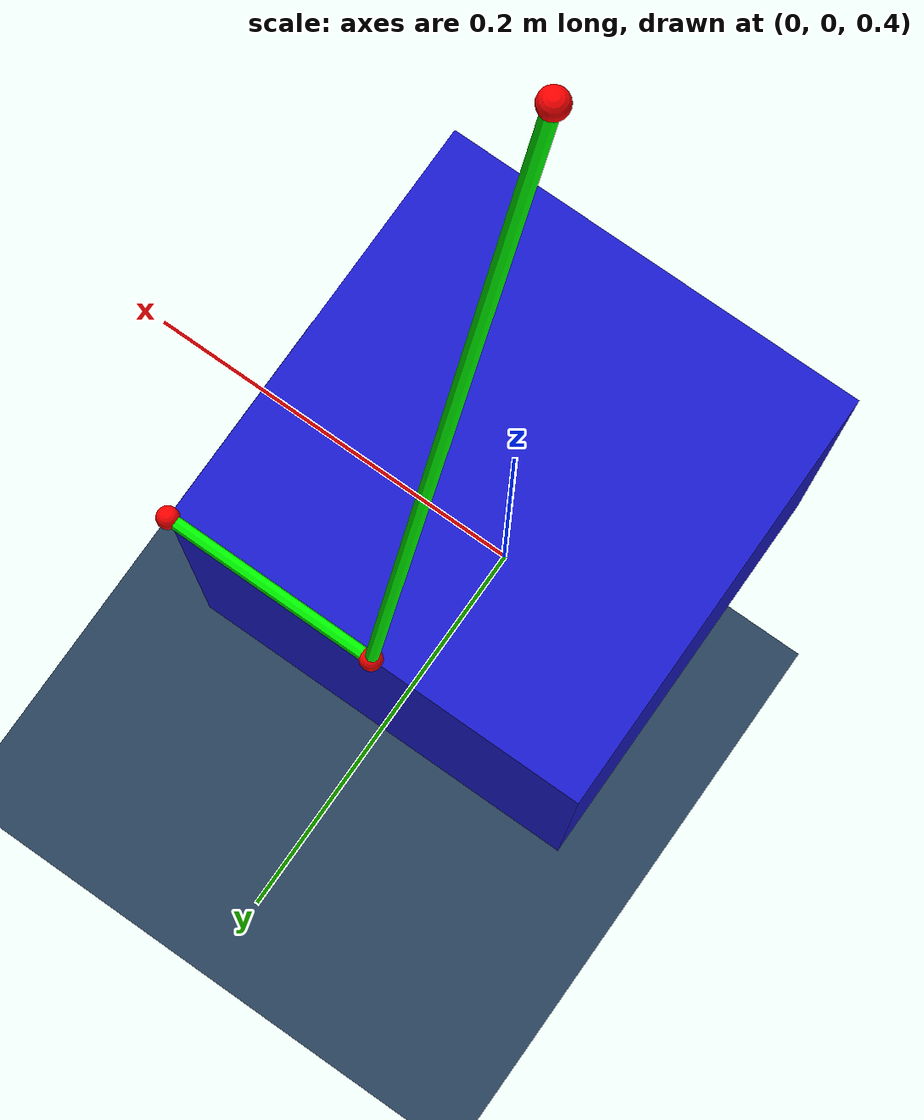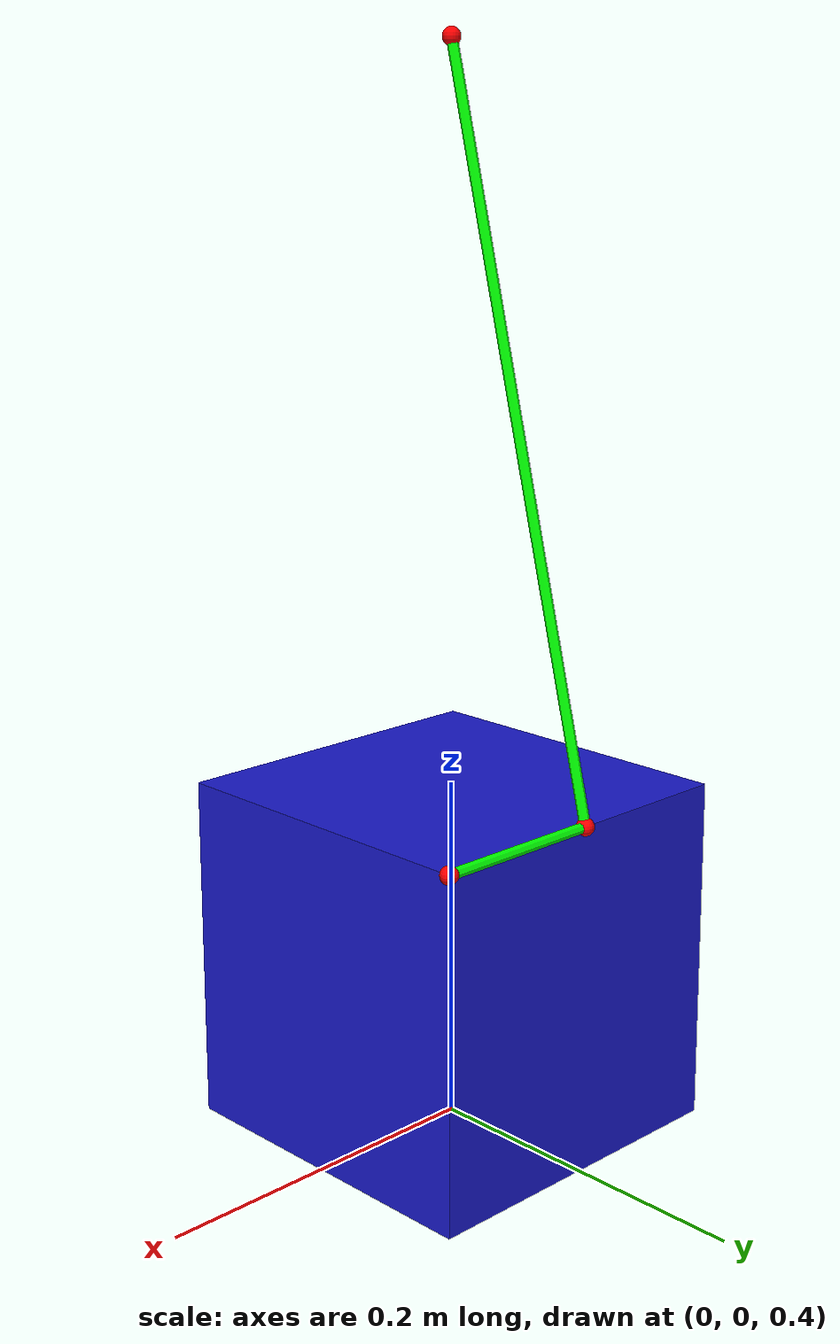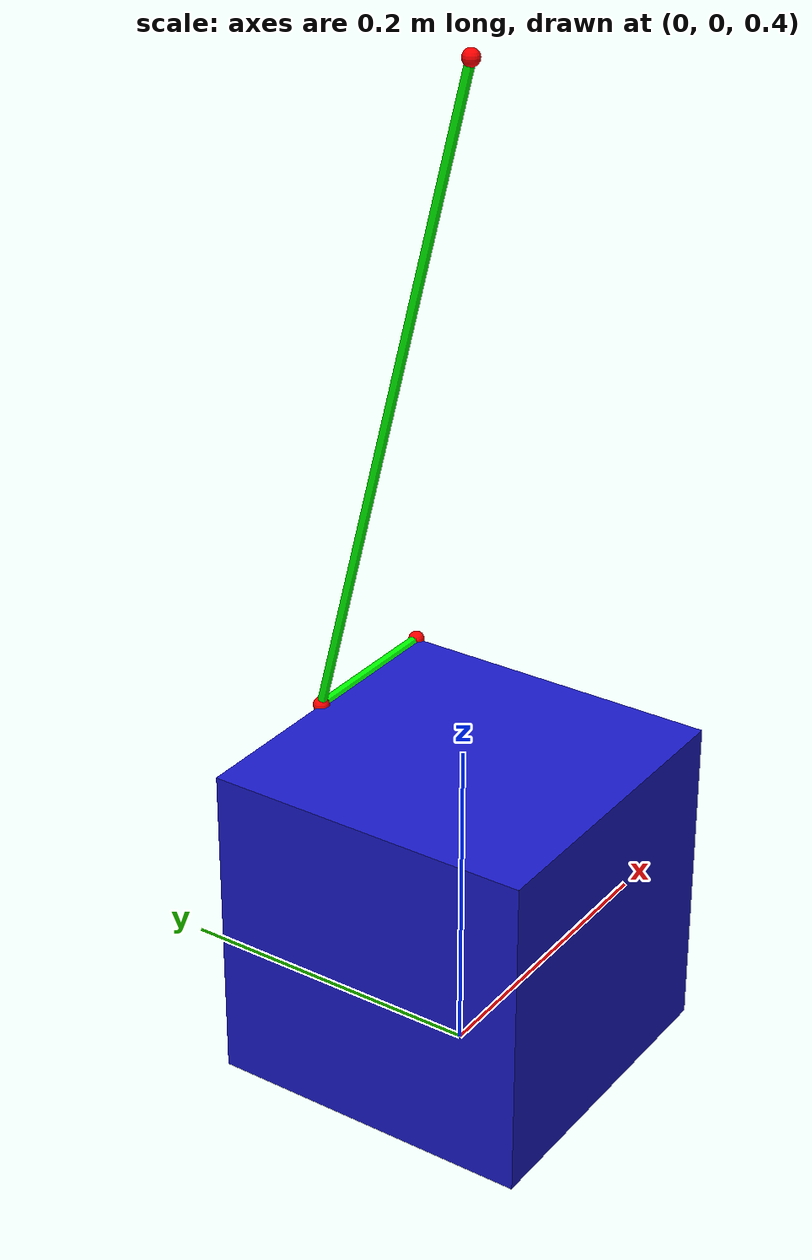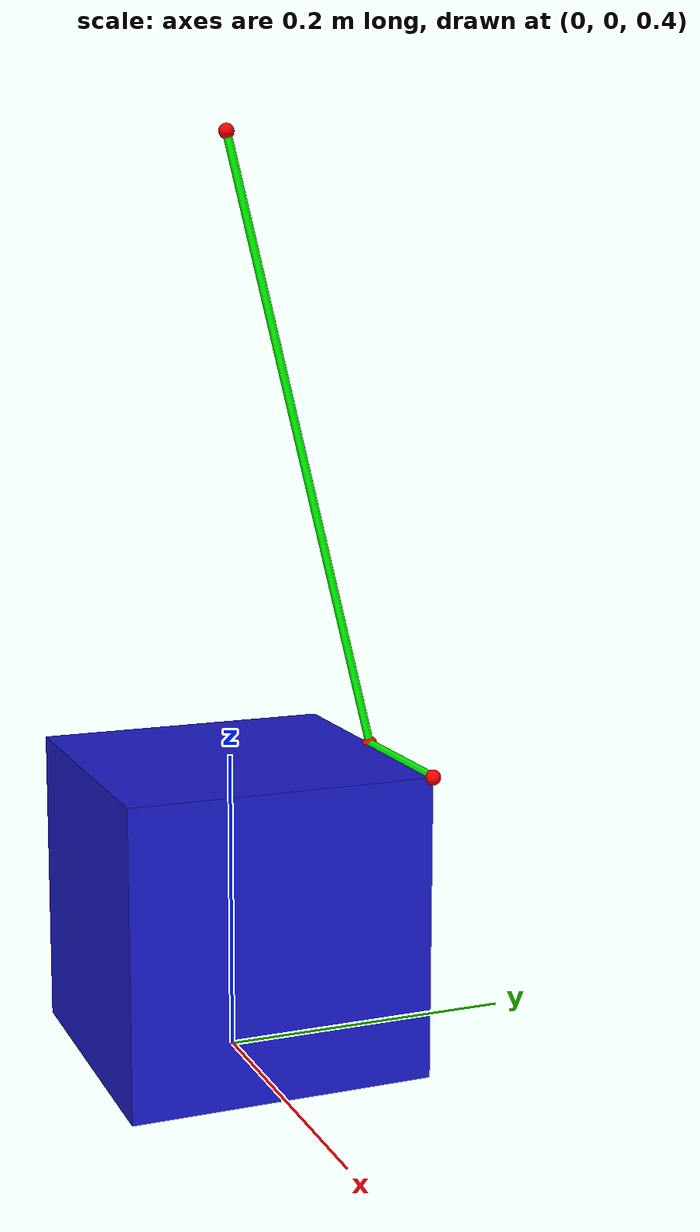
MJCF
<mujoco>

    <default>
        <site type="sphere" rgba="1 0 0 1" size="0.005"/>
        <tendon rgba="0 1 0 1" stiffness="50" damping="50"/>
    </default>

    <asset>
        <texture name="grid" type="2d" builtin="checker" width="512" height="512" rgb1=".1 .2 .3" rgb2=".2 .3 .4"/>
        <material name="grid" texture="grid" texrepeat="1 1" texuniform="true" reflectance=".2"/>
    </asset>

    <visual>
        <headlight diffuse=".7 .7 .7"/>
    </visual>

    <worldbody>
        <light pos="0 -1 5" dir="1 1 -10"/>
        <light pos="1.5 -1 5" dir="-1 1 -10"/>
        <body name = "worldplane">
            <geom type="plane" material="grid" size="0 0 .1" pos="0 0 -.1"/>
        </body>

        <site name="origin0" pos="0 0 1."/>
        <body name="mass" pos="0 0 0.5">
            <joint type = "free" stiffness = "0" damping = ".1" frictionloss="0" armature="0"/>
            <geom name="massgeom" type="box" size="0.1 0.1 0.1" pos="0 0.0 0" mass="1" rgba = ".1 .1 .8 1"/>
            <site name="insertion0" pos="0 0.1 0.1"/>
            <site name="insertion1" pos="0.1 0.1 0.1"/>
        </body>
    </worldbody>

    <tendon>
        <spatial name="rope0">
            <site site="origin0"/>
            <site site="insertion0"/>
            <site site="insertion1"/>
        </spatial>
    </tendon>

    <sensor>
        <force name="tension0" site="origin0"/>
    </sensor>

</mujoco>
